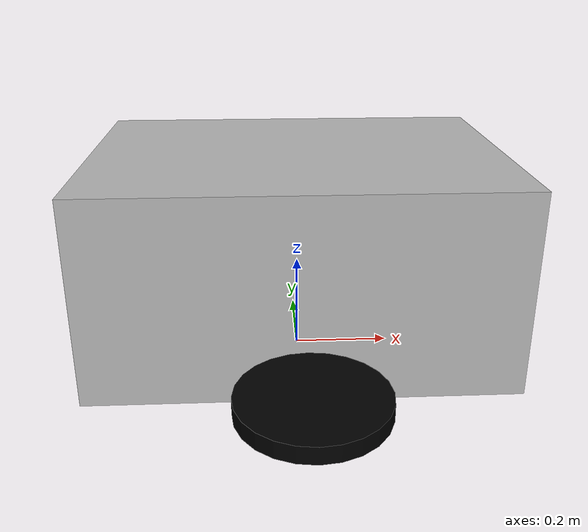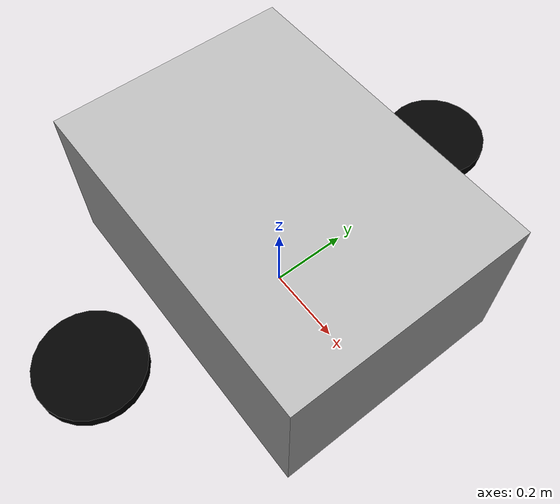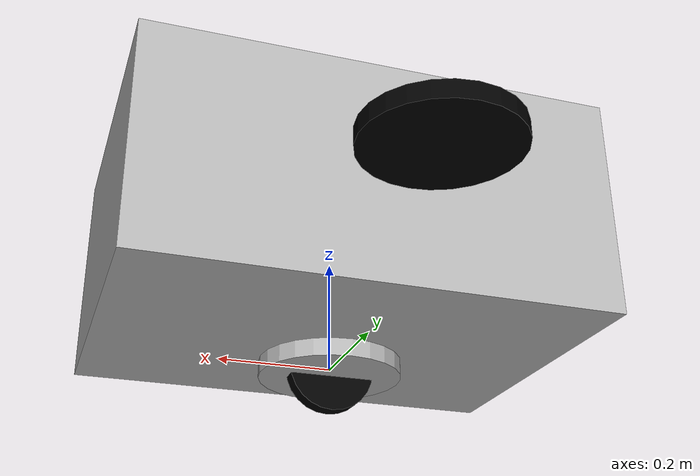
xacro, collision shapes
<?xml version="1.0"?>
<!-- Materials -->
<robot xmlns:xacro="http://www.ros.org/wiki/xacro" name="mp_500">

    <material name="Neobotix/Black">
        <color rgba="0.0 0.0 0.0 1.0"/>
    </material>

    <material name="Neobotix/Blue">
        <color rgba="0.0 0.0 0.8 1.0"/>
    </material>

    <material name="Neobotix/Green">
        <color rgba="0.0 0.8 0.0 1.0"/>
    </material>

    <material name="Neobotix/Grey">
        <color rgba="0.7 0.7 0.7 1.0"/>
    </material>

    <material name="Neobotix/Grey2">
        <color rgba="0.9 0.9 0.9 1.0"/>
    </material>

    <material name="Neobotix/Red">
        <color rgba="0.8 0.0 0.0 1.0"/>
    </material>

    <material name="Neobotix/White">
        <color rgba="1.0 1.0 1.0 1.0"/>
    </material>

    <material name="Neobotix/Yellow">
        <color rgba="1.0 1.0 0 10" />
    </material>

<!--++++++++++++++++++++++++++++++base_link++++++++++++++++++++++++++++++++++++++++++++++++++++-->
<!--++++++++++++++++++++body++++++++++++++++++++++++++++-->
  <link name="base_link">
	  <inertial>
		  <mass value="5.67" />
		    <origin xyz="0 0 0.01" rpy="0 0 0"/>
		    <inertia ixx="0.07" ixy="0.0" ixz="0.0"
		             iyy="0.08" iyz="0.0"
		             izz="0.1" />
	  </inertial>
        <visual name='body'>
        <!--origin xyz="0.0 0.0 0.234" rpy="0 0 1.57" /--><!-- for cylinder -->
		<origin xyz="0.0 0.0 0.09" rpy="0 0 1.57" /><!-- for STL -->
        <geometry>
            <mesh filename="package://neo_mp_500/robot_model/mp_500/meshes/BODY.STL" scale="0.01 0.01 0.01"/>
	    	<!--cylinder length="0.381" radius="0.2545"/-->
	    	<!--box size="0.445 0.277 0.17"/-->
        </geometry>
        <material name="Neobotix/Grey" />
      </visual>
      <collision name='body_collision'>
        <origin xyz="0.0 0.0 0.244" rpy="0 0 0" />
        <geometry>
          <box size="0.830 0.600 0.400"/>
          <!--cylinder length="0.381" radius="0.2545"/-->
        </geometry>
      </collision>
</link>
<!--+++++++++++++++++++castor_front++++++++++++++++++++++++-->
<!--+++++++++++++++++++castor_back++++++++++++++++++++++++-->

<!--+++++++++++++++++++wheel_left_link++++++++++++++++++++++++-->
	<link name="wheel_left_link" type="wheel">
    	  <inertial>
      		<mass value="1.5" />
     		 <origin xyz="-0.05 0 -0.245" rpy="0 0 0" />
      		<inertia ixx="0.0051" ixy="0" ixz="0" iyy="0.0051" iyz="0" izz="0.009" />
    	  </inertial>

    <visual>
     	<origin xyz="-0.05 0 -0.245" rpy="0 1.57 0" />
     	<geometry>
			<mesh filename="package://neo_mp_500/robot_model/mp_500/meshes/WHEEL-LEFT.STL" scale="0.01 0.01 0.01" />
     	</geometry>
     	<material name="Neobotix/Black" />
    </visual>

    <collision>
     	<origin xyz="-0.05 0 -0.245" rpy="0 1.57 0" />
     	<geometry>
        	<cylinder radius="0.125" length="0.03"/>
     	</geometry>
    </collision>

</link>

<!--+++++++++++++++++++wheel_left_joint++++++++++++++++++++++++-->
	<joint name="wheel_left_joint" type="revolute">
		<origin xyz="0 -0.2645 0.130" rpy="0 1.57 1.57" />
    	<axis xyz="0 0 1"/>
    	<limit effort="1000.0" lower="-1e+16" upper="1e+16" velocity="3.5"/>
    	<joint_properties damping="0.0" friction="0.0" />
    	<parent link="base_link" />
    	<child link="wheel_left_link" />
    </joint>

<!--+++++++++++++++++++wheel_right_link++++++++++++++++++++++++-->
<link name="wheel_right_link" type="wheel">
	<inertial>
		  <mass value="1.5" />
		  <origin xyz="-0.05 0 0.245" rpy="0 0 0" />
		  <inertia ixx="0.0051" ixy="0" ixz="0" iyy="0.0051" iyz="0" izz="0.009" />
	</inertial>

		<visual>
		 	<origin xyz="-0.05 0 0.245" rpy="0 1.57 0" />
		 	<geometry>
				<mesh filename="package://neo_mp_500/robot_model/mp_500/meshes/WHEEL-RIGHT.STL" scale="0.01 0.01 0.01" />
		 	</geometry>
		 	<material name="Neobotix/Black" />
		</visual>

		<collision>
		 	<origin xyz="-0.05 0 0.245" rpy="0 1.57 0" />
		 	<geometry>
		    	<cylinder radius="0.125" length="0.03"/>
		 	</geometry>
		</collision>
	</link>

<!--+++++++++++++++++++wheel_right_joint++++++++++++++++++++++++-->
	<joint name="wheel_right_joint" type="revolute">
    	<origin xyz="0 0.2645 0.130" rpy="0 1.57 1.57" />
    	<axis xyz="0 0 1"/>
    	<limit effort="1000.0" lower="-1e+16" upper="1e+16" velocity="3.5"/>
    	<joint_properties damping="0.0" friction="0.0" />
    	<parent link="base_link" />
    	<child link="wheel_right_link" />
    </joint>

<!--+++++++++++++++++++laserscanner_front_joint++++++++++++++++++++++++-->
	<joint name="laserscanner_front_joint" type="fixed">
		  <axis xyz="0 1 0" />
		  <origin xyz="0.244 0 0.141" rpy="3.14 0 0" />
		  <parent link="base_link"/>
		  <child link="laserscanner_front_link"/>
	</joint>

<!--+++++++++++++++++++laserscanner_front_link++++++++++++++++++++++++-->
	<link name="laserscanner_front_link" type="laser">
		<inertial>
			<mass value="0.001" />
			<origin xyz="0 0 0.0" rpy="0 0 0" />
			<inertia ixx="0.0001" ixy="0" ixz="0" iyy="0.000001" iyz="0" izz="0.0001" />
	  	</inertial>
	  	<visual>
			<origin xyz="0 0 -0.04" rpy="0 0 -1.57" />
			<geometry>
		  		<mesh filename="package://neo_mp_500/robot_model/mp_500/meshes/SICK-S300.STL" />
			</geometry>
			<material name="Neobotix/Yellow" />
	  	</visual>
	  	<collision>
			<origin xyz="0 0 0" rpy="0 0 0" />
			<geometry>
		  	<cylinder length="0.154" radius="0.053" />
			</geometry>
	  	</collision>
	</link>
<!--+++++++++++++++ wheel_hanger+++++++++++++++++++++++++++-->
<link name="hanger">
	<inertial>
		  <mass value="0.5" />
		  <origin xyz="0 0 0" rpy="1.57 -1.57 1.57" />
		  <inertia ixx="0.0051" ixy="0" ixz="0" iyy="0.0051" iyz="0" izz="0.009" />
	</inertial>

	<visual>
	 	<origin xyz="0 0 0" rpy="0 0 0" />
	 	<geometry>
		      <mesh filename="package://neo_mp_500/robot_model/mp_500/meshes/HANGER.STL" scale="0.01 0.01 0.01" />
		 </geometry>
		 <material name="Neobotix/Grey" />
	</visual>

	<collision>
		 <origin xyz="0 0 0" rpy="0 1.57 0" />
		 <geometry>
          	 <cylinder radius="0.125" length="0.03"/>
		 </geometry>
	</collision>
</link>

<!--+++++++++++++++++++hanger_joint++++++++++++++++++++++++-->
    <joint name="hanger_joint" type="revolute">
    	<origin xyz="0 0 0" rpy="0 1.57 1.57" />
    	<axis xyz="0 1 0"/>
        <limit effort="1000.0" lower="-1e+16" upper="1e+16" velocity="3.5"/>
    	<joint_properties damping="0.0" friction="0.0" />
    	<parent link="base_link" />
    	<child link="hanger" />
    </joint>

<!--+++++++++++++++ wheel_hanger+++++++++++++++++++++++++++-->
<link name="wheel_front_link" type="wheel">
	<inertial>
		  <mass value="0.25" />
		  <origin xyz="0 0 0" rpy="0 0 0" />
		  <inertia ixx="0.0051" ixy="0" ixz="0" iyy="0.0051" iyz="0" izz="0.009" />
	</inertial>

	<visual>
	 	<origin xyz="0 0 0" rpy="0 0 0" />
	 	<geometry>
		      <mesh filename="package://neo_mp_500/robot_model/mp_500/meshes/FRONT-WHEEL.STL" scale="0.01 0.01 0.01" />
		 </geometry>
		 <material name="Neobotix/Black" />
	</visual>

	<collision>
		 <origin xyz="0 0 0" rpy="0 1.57 0" />
		 <geometry>
          	 <cylinder radius="0.075" length="0.03"/>
		 </geometry>
	</collision>
</link>
<!--+++++++++++++++++++wheel_front_joint++++++++++++++++++++++++-->
    <joint name="wheel_front_joint" type="revolute">
    	<origin xyz="0 0 0" rpy="0 1.57 1.57" />
    	<axis xyz="0 0 1"/>
        <limit effort="1000.0" lower="-1e+16" upper="1e+16" velocity="3.5"/>
    	<joint_properties damping="0.0" friction="0.0" />
    	<parent link="hanger" />
    	<child link="wheel_front_link" />
    </joint>

<transmission name="wheel_left">
    <type>transmission_interface/SimpleTransmission</type>
    <joint name="wheel_left_joint">
      <hardwareInterface>EffortJointInterface</hardwareInterface>
    </joint>
    <actuator name="wheel_left_joint_motor">
      <hardwareInterface>EffortJointInterface</hardwareInterface>
      <mechanicalReduction>1</mechanicalReduction>
    </actuator>
  </transmission>

  <transmission name="wheel_right">
    <type>transmission_interface/SimpleTransmission</type>
    <joint name="wheel_right_joint">
      <hardwareInterface>EffortJointInterface</hardwareInterface>
    </joint>
    <actuator name="wheel_right_joint_motor">
      <hardwareInterface>EffortJointInterface</hardwareInterface>
      <mechanicalReduction>1</mechanicalReduction>
    </actuator>
  </transmission>

    <gazebo>
      <plugin name="differential_drive_controller" filename="libdiffdrive_plugin.so">
        <robotNamespace>mp_500</robotNamespace>
      </plugin>
    </gazebo>

</robot>
